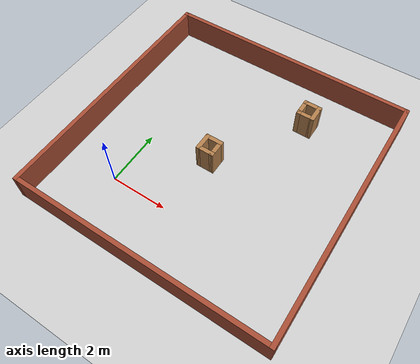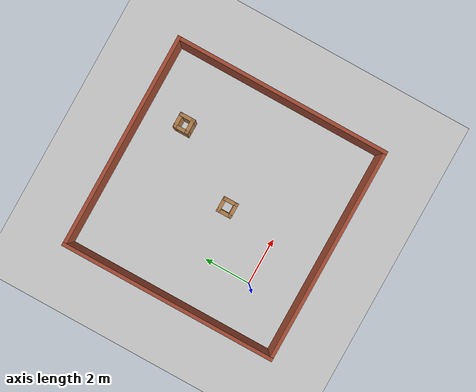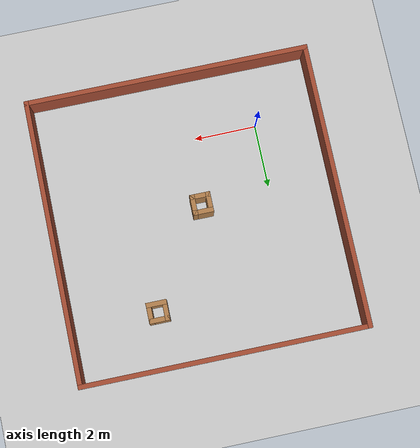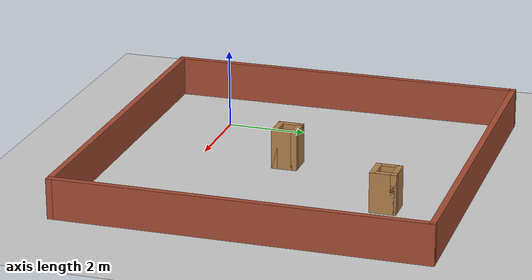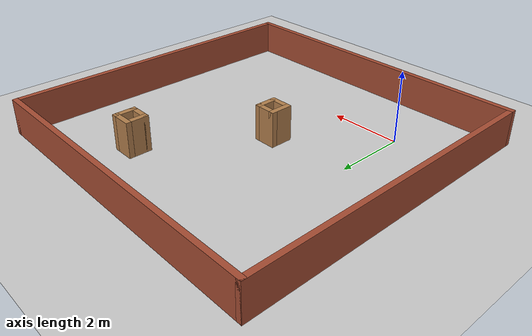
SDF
<sdf version="1.7">
 <world name="default">
  <light name="sun" type="directional">
   <pose>0 0 10 0 -0 0</pose>
   <diffuse>0.8 0.8 0.8 1</diffuse>
   <specular>0.2 0.2 0.2 1</specular>
   <attenuation>
    <range>1000</range>
    <constant>0.9</constant>
    <linear>0.01</linear>
    <quadratic>0.001</quadratic>
   </attenuation>
   <direction>-0.5 0.1 -0.9</direction>
   <spot><inner_angle>0</inner_angle><outer_angle>0</outer_angle><falloff>0</falloff></spot>
  </light>
  <model name="ground_plane">
   <static>1</static>
   <link name="link">
    <collision name="collision">
     <geometry><plane><normal>0 0 1</normal><size>100 100</size></plane></geometry>
     <surface>
      <contact><collide_bitmask>65535</collide_bitmask></contact>
      <friction><ode><mu>100</mu><mu2>50</mu2></ode></friction>
     </surface>
    </collision>
    <visual name="visual">
     <cast_shadows>0</cast_shadows>
     <geometry><plane><normal>0 0 1</normal><size>100 100</size></plane></geometry>
     <material>
      <script><uri>file://media/materials/scripts/gazebo.material</uri><name>Gazebo/Grey</name></script>
     </material>
    </visual>
   </link>
  </model>
  <gravity>0 0 -9.8</gravity>
  <magnetic_field>6e-06 2.3e-05 -4.2e-05</magnetic_field>
  <atmosphere type="adiabatic"/>
  <physics type="ode">
   <max_step_size>0.001</max_step_size>
   <real_time_factor>1</real_time_factor>
   <real_time_update_rate>1000</real_time_update_rate>
  </physics>
  <scene><ambient>0.4 0.4 0.4 1</ambient><background>0.7 0.7 0.7 1</background><shadows>1</shadows></scene>
  <spherical_coordinates>
   <surface_model>EARTH_WGS84</surface_model>
   <latitude_deg>0</latitude_deg>
   <longitude_deg>0</longitude_deg>
   <elevation>0</elevation>
   <heading_deg>0</heading_deg>
  </spherical_coordinates>
  <model name="two_obstacles_map">
   <pose>2.5 2.5 0 0 -0 0</pose>
   <link name="Wall_11">
    <collision name="Wall_11_Collision">
     <geometry><box><size>0.65 0.15 1</size></box></geometry>
     <pose>0 0 0.5 0 -0 0</pose>
    </collision>
    <visual name="Wall_11_Visual">
     <pose>0 0 0.5 0 -0 0</pose>
     <geometry><box><size>0.65 0.15 1</size></box></geometry>
     <material>
      <script><uri>file://media/materials/scripts/gazebo.material</uri><name>Gazebo/Wood</name></script>
      <ambient>1 1 1 1</ambient>
     </material>
     <meta><layer>0</layer></meta>
    </visual>
    <pose>-0.25 -0.5 0 0 -0 0</pose>
   </link>
   <link name="Wall_12">
    <collision name="Wall_12_Collision">
     <geometry><box><size>0.65 0.15 1</size></box></geometry>
     <pose>0 0 0.5 0 -0 0</pose>
    </collision>
    <visual name="Wall_12_Visual">
     <pose>0 0 0.5 0 -0 0</pose>
     <geometry><box><size>0.65 0.15 1</size></box></geometry>
     <material>
      <script><uri>file://media/materials/scripts/gazebo.material</uri><name>Gazebo/Wood</name></script>
      <ambient>1 1 1 1</ambient>
     </material>
     <meta><layer>0</layer></meta>
    </visual>
    <pose>-0 -0.25 0 0 -0 1.5708</pose>
   </link>
   <link name="Wall_13">
    <collision name="Wall_13_Collision">
     <geometry><box><size>0.65 0.15 1</size></box></geometry>
     <pose>0 0 0.5 0 -0 0</pose>
    </collision>
    <visual name="Wall_13_Visual">
     <pose>0 0 0.5 0 -0 0</pose>
     <geometry><box><size>0.65 0.15 1</size></box></geometry>
     <material>
      <script><uri>file://media/materials/scripts/gazebo.material</uri><name>Gazebo/Wood</name></script>
      <ambient>1 1 1 1</ambient>
     </material>
     <meta><layer>0</layer></meta>
    </visual>
    <pose>-0.25 0 0 0 -0 3.14159</pose>
   </link>
   <link name="Wall_14">
    <collision name="Wall_14_Collision">
     <geometry><box><size>0.65 0.15 1</size></box></geometry>
     <pose>0 0 0.5 0 -0 0</pose>
    </collision>
    <visual name="Wall_14_Visual">
     <pose>0 0 0.5 0 -0 0</pose>
     <geometry><box><size>0.65 0.15 1</size></box></geometry>
     <material>
      <script><uri>file://media/materials/scripts/gazebo.material</uri><name>Gazebo/Wood</name></script>
      <ambient>1 1 1 1</ambient>
     </material>
     <meta><layer>0</layer></meta>
    </visual>
    <pose>-0.5 -0.25 0 0 -0 -1.5708</pose>
   </link>
   <link name="Wall_2">
    <collision name="Wall_2_Collision">
     <geometry><box><size>9.15 0.15 1</size></box></geometry>
     <pose>0 0 0.5 0 -0 0</pose>
    </collision>
    <visual name="Wall_2_Visual">
     <pose>0 0 0.5 0 -0 0</pose>
     <geometry><box><size>9.15 0.15 1</size></box></geometry>
     <material>
      <script><uri>file://media/materials/scripts/gazebo.material</uri><name>Gazebo/Bricks</name></script>
      <ambient>1 1 1 1</ambient>
     </material>
     <meta><layer>0</layer></meta>
    </visual>
    <pose>-4.5 0 0 0 -0 1.5708</pose>
   </link>
   <link name="Wall_24">
    <collision name="Wall_24_Collision">
     <geometry><box><size>0.65 0.15 1</size></box></geometry>
     <pose>0 0 0.5 0 -0 0</pose>
    </collision>
    <visual name="Wall_24_Visual">
     <pose>0 0 0.5 0 -0 0</pose>
     <geometry><box><size>0.65 0.15 1</size></box></geometry>
     <material>
      <script><uri>file://media/materials/scripts/gazebo.material</uri><name>Gazebo/Wood</name></script>
      <ambient>1 1 1 1</ambient>
     </material>
     <meta><layer>0</layer></meta>
    </visual>
    <pose>1.75 2.5 0 0 -0 0</pose>
   </link>
   <link name="Wall_37">
    <collision name="Wall_37_Collision">
     <geometry><box><size>0.65 0.15 1</size></box></geometry>
     <pose>0 0 0.5 0 -0 0</pose>
    </collision>
    <visual name="Wall_37_Visual">
     <pose>0 0 0.5 0 -0 0</pose>
     <geometry><box><size>0.65 0.15 1</size></box></geometry>
     <material>
      <script><uri>file://media/materials/scripts/gazebo.material</uri><name>Gazebo/Wood</name></script>
      <ambient>1 1 1 1</ambient>
     </material>
     <meta><layer>0</layer></meta>
    </visual>
    <pose>2 2.75 0 0 -0 1.5708</pose>
   </link>
   <link name="Wall_39">
    <collision name="Wall_39_Collision">
     <geometry><box><size>0.65 0.15 1</size></box></geometry>
     <pose>0 0 0.5 0 -0 0</pose>
    </collision>
    <visual name="Wall_39_Visual">
     <pose>0 0 0.5 0 -0 0</pose>
     <geometry><box><size>0.65 0.15 1</size></box></geometry>
     <material>
      <script><uri>file://media/materials/scripts/gazebo.material</uri><name>Gazebo/Wood</name></script>
      <ambient>1 1 1 1</ambient>
     </material>
     <meta><layer>0</layer></meta>
    </visual>
    <pose>1.75 3 0 0 -0 3.14159</pose>
   </link>
   <link name="Wall_4">
    <collision name="Wall_4_Collision">
     <geometry><box><size>9.15 0.15 1</size></box></geometry>
     <pose>0 0 0.5 0 -0 0</pose>
    </collision>
    <visual name="Wall_4_Visual">
     <pose>0 0 0.5 0 -0 0</pose>
     <geometry><box><size>9.15 0.15 1</size></box></geometry>
     <material>
      <script><uri>file://media/materials/scripts/gazebo.material</uri><name>Gazebo/Bricks</name></script>
      <ambient>1 1 1 1</ambient>
     </material>
     <meta><layer>0</layer></meta>
    </visual>
    <pose>-0 4.5 0 0 -0 0</pose>
   </link>
   <link name="Wall_41">
    <collision name="Wall_41_Collision">
     <geometry><box><size>0.65 0.15 1</size></box></geometry>
     <pose>0 0 0.5 0 -0 0</pose>
    </collision>
    <visual name="Wall_41_Visual">
     <pose>0 0 0.5 0 -0 0</pose>
     <geometry><box><size>0.65 0.15 1</size></box></geometry>
     <material>
      <script><uri>file://media/materials/scripts/gazebo.material</uri><name>Gazebo/Wood</name></script>
      <ambient>1 1 1 1</ambient>
     </material>
     <meta><layer>0</layer></meta>
    </visual>
    <pose>1.5 2.75 0 0 -0 -1.5708</pose>
   </link>
   <link name="Wall_7">
    <collision name="Wall_7_Collision">
     <geometry><box><size>9.15 0.15 1</size></box></geometry>
     <pose>0 0 0.5 0 -0 0</pose>
    </collision>
    <visual name="Wall_7_Visual">
     <pose>0 0 0.5 0 -0 0</pose>
     <geometry><box><size>9.15 0.15 1</size></box></geometry>
     <material>
      <script><uri>file://media/materials/scripts/gazebo.material</uri><name>Gazebo/Bricks</name></script>
      <ambient>1 1 1 1</ambient>
     </material>
     <meta><layer>0</layer></meta>
    </visual>
    <pose>4.5 0 0 0 -0 -1.5708</pose>
   </link>
   <link name="Wall_9">
    <collision name="Wall_9_Collision">
     <geometry><box><size>9.15 0.15 1</size></box></geometry>
     <pose>0 0 0.5 0 -0 0</pose>
    </collision>
    <visual name="Wall_9_Visual">
     <pose>0 0 0.5 0 -0 0</pose>
     <geometry><box><size>9.15 0.15 1</size></box></geometry>
     <material>
      <script><uri>file://media/materials/scripts/gazebo.material</uri><name>Gazebo/Bricks</name></script>
      <ambient>1 1 1 1</ambient>
     </material>
     <meta><layer>0</layer></meta>
    </visual>
    <pose>-0 -4.5 0 0 -0 3.14159</pose>
   </link>
   <static>1</static>
  </model>
 </world>
</sdf>
